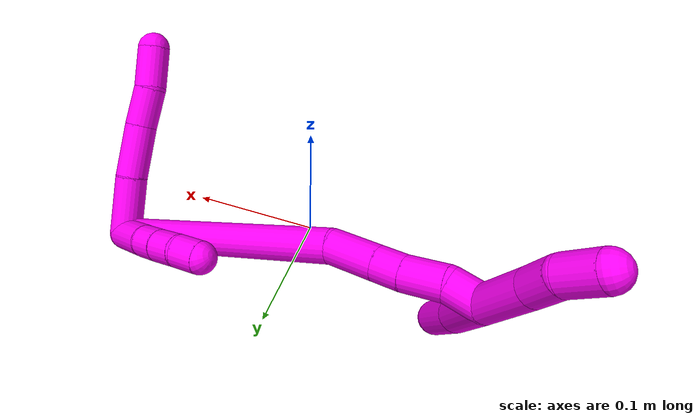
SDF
<sdf version="1.7">
 <world name="default">
  <model name="10">
   <static>0</static>
   <link name="10">
    <collision name="collision-cylinder-e_1_2_8">
     <pose>0.021221 -0.003417 0.007807 0.412497 1.18893 0.281023</pose>
     <geometry><cylinder><radius>0.0125</radius><length>0.045737</length></cylinder></geometry>
     <surface>
      <friction><ode><mu>1.16</mu><mu2>1.16</mu2><slip1>0</slip1><slip2>0</slip2></ode></friction>
      <contact><ode><kp>1e+06</kp><kd>1</kd><max_vel>0</max_vel><min_depth>0.001</min_depth></ode></contact>
     </surface>
    </collision>
    <visual name="visual-cylinder-e_1_2_8">
     <pose>0.021221 -0.003417 0.007807 0.412497 1.18893 0.281023</pose>
     <geometry><cylinder><radius>0.0125</radius><length>0.045737</length></cylinder></geometry>
     <material><ambient>1 0 0.964706 1</ambient></material>
    </visual>
    <collision name="collision-cylinder-e_2_8_9">
     <pose>0.061256 -0.011879 0.022971 0.601195 1.12803 0.387259</pose>
     <geometry><cylinder><radius>0.0125</radius><length>0.041643</length></cylinder></geometry>
     <surface>
      <friction><ode><mu>1.16</mu><mu2>1.16</mu2><slip1>0</slip1><slip2>0</slip2></ode></friction>
      <contact><ode><kp>1e+06</kp><kd>1</kd><max_vel>0</max_vel><min_depth>0.001</min_depth></ode></contact>
     </surface>
    </collision>
    <visual name="visual-cylinder-e_2_8_9">
     <pose>0.061256 -0.011879 0.022971 0.601195 1.12803 0.387259</pose>
     <geometry><cylinder><radius>0.0125</radius><length>0.041643</length></cylinder></geometry>
     <material><ambient>1 0 0.964706 1</ambient></material>
    </visual>
    <collision name="collision-cylinder-e_3_9_10">
     <pose>0.093406 -0.020513 0.036978 0.494771 1.05531 0.292268</pose>
     <geometry><cylinder><radius>0.0125</radius><length>0.030656</length></cylinder></geometry>
     <surface>
      <friction><ode><mu>1.16</mu><mu2>1.16</mu2><slip1>0</slip1><slip2>0</slip2></ode></friction>
      <contact><ode><kp>1e+06</kp><kd>1</kd><max_vel>0</max_vel><min_depth>0.001</min_depth></ode></contact>
     </surface>
    </collision>
    <visual name="visual-cylinder-e_3_9_10">
     <pose>0.093406 -0.020513 0.036978 0.494771 1.05531 0.292268</pose>
     <geometry><cylinder><radius>0.0125</radius><length>0.030656</length></cylinder></geometry>
     <material><ambient>1 0 0.964706 1</ambient></material>
    </visual>
    <collision name="collision-cylinder-e_4_10_6">
     <pose>0.121802 -0.02781 0.047484 0.766005 1.22939 0.5542</pose>
     <geometry><cylinder><radius>0.0125</radius><length>0.031964</length></cylinder></geometry>
     <surface>
      <friction><ode><mu>1.16</mu><mu2>1.16</mu2><slip1>0</slip1><slip2>0</slip2></ode></friction>
      <contact><ode><kp>1e+06</kp><kd>1</kd><max_vel>0</max_vel><min_depth>0.001</min_depth></ode></contact>
     </surface>
    </collision>
    <visual name="visual-cylinder-e_4_10_6">
     <pose>0.121802 -0.02781 0.047484 0.766005 1.22939 0.5542</pose>
     <geometry><cylinder><radius>0.0125</radius><length>0.031964</length></cylinder></geometry>
     <material><ambient>1 0 0.964706 1</ambient></material>
    </visual>
    <collision name="collision-cylinder-e_1_2_11">
     <pose>-0.004493 0.006245 0.017662 -0.339865 -0.235407 0.040575</pose>
     <geometry><cylinder><radius>0.0125</radius><length>0.03853</length></cylinder></geometry>
     <surface>
      <friction><ode><mu>1.16</mu><mu2>1.16</mu2><slip1>0</slip1><slip2>0</slip2></ode></friction>
      <contact><ode><kp>1e+06</kp><kd>1</kd><max_vel>0</max_vel><min_depth>0.001</min_depth></ode></contact>
     </surface>
    </collision>
    <visual name="visual-cylinder-e_1_2_11">
     <pose>-0.004493 0.006245 0.017662 -0.339865 -0.235407 0.040575</pose>
     <geometry><cylinder><radius>0.0125</radius><length>0.03853</length></cylinder></geometry>
     <material><ambient>1 0 0.964706 1</ambient></material>
    </visual>
    <collision name="collision-cylinder-e_2_11_12">
     <pose>-0.011815 0.014384 0.044796 -0.19735 -0.284791 0.028383</pose>
     <geometry><cylinder><radius>0.0125</radius><length>0.02013</length></cylinder></geometry>
     <surface>
      <friction><ode><mu>1.16</mu><mu2>1.16</mu2><slip1>0</slip1><slip2>0</slip2></ode></friction>
      <contact><ode><kp>1e+06</kp><kd>1</kd><max_vel>0</max_vel><min_depth>0.001</min_depth></ode></contact>
     </surface>
    </collision>
    <visual name="visual-cylinder-e_2_11_12">
     <pose>-0.011815 0.014384 0.044796 -0.19735 -0.284791 0.028383</pose>
     <geometry><cylinder><radius>0.0125</radius><length>0.02013</length></cylinder></geometry>
     <material><ambient>1 0 0.964706 1</ambient></material>
    </visual>
    <collision name="collision-cylinder-e_3_12_13">
     <pose>-0.017697 0.017603 0.064343 -0.13073 -0.292016 0.019251</pose>
     <geometry><cylinder><radius>0.0125</radius><length>0.02122</length></cylinder></geometry>
     <surface>
      <friction><ode><mu>1.16</mu><mu2>1.16</mu2><slip1>0</slip1><slip2>0</slip2></ode></friction>
      <contact><ode><kp>1e+06</kp><kd>1</kd><max_vel>0</max_vel><min_depth>0.001</min_depth></ode></contact>
     </surface>
    </collision>
    <visual name="visual-cylinder-e_3_12_13">
     <pose>-0.017697 0.017603 0.064343 -0.13073 -0.292016 0.019251</pose>
     <geometry><cylinder><radius>0.0125</radius><length>0.02122</length></cylinder></geometry>
     <material><ambient>1 0 0.964706 1</ambient></material>
    </visual>
    <collision name="collision-cylinder-e_4_13_5">
     <pose>-0.024799 0.018247 0.083602 0.073912 -0.414063 -0.015531</pose>
     <geometry><cylinder><radius>0.0125</radius><length>0.02012</length></cylinder></geometry>
     <surface>
      <friction><ode><mu>1.16</mu><mu2>1.16</mu2><slip1>0</slip1><slip2>0</slip2></ode></friction>
      <contact><ode><kp>1e+06</kp><kd>1</kd><max_vel>0</max_vel><min_depth>0.001</min_depth></ode></contact>
     </surface>
    </collision>
    <visual name="visual-cylinder-e_4_13_5">
     <pose>-0.024799 0.018247 0.083602 0.073912 -0.414063 -0.015531</pose>
     <geometry><cylinder><radius>0.0125</radius><length>0.02012</length></cylinder></geometry>
     <material><ambient>1 0 0.964706 1</ambient></material>
    </visual>
    <collision name="collision-cylinder-e_1_2_14">
     <pose>-0.02074 -0.00727 0.092297 0.078605 -0.220378 -0.008701</pose>
     <geometry><cylinder><radius>0.0125</radius><length>0.189754</length></cylinder></geometry>
     <surface>
      <friction><ode><mu>1.16</mu><mu2>1.16</mu2><slip1>0</slip1><slip2>0</slip2></ode></friction>
      <contact><ode><kp>1e+06</kp><kd>1</kd><max_vel>0</max_vel><min_depth>0.001</min_depth></ode></contact>
     </surface>
    </collision>
    <visual name="visual-cylinder-e_1_2_14">
     <pose>-0.02074 -0.00727 0.092297 0.078605 -0.220378 -0.008701</pose>
     <geometry><cylinder><radius>0.0125</radius><length>0.189754</length></cylinder></geometry>
     <material><ambient>1 0 0.964706 1</ambient></material>
    </visual>
    <collision name="collision-cylinder-e_2_14_15">
     <pose>-0.049692 -0.014468 0.200703 -0.004496 -0.471393 0.00108</pose>
     <geometry><cylinder><radius>0.0125</radius><length>0.036165</length></cylinder></geometry>
     <surface>
      <friction><ode><mu>1.16</mu><mu2>1.16</mu2><slip1>0</slip1><slip2>0</slip2></ode></friction>
      <contact><ode><kp>1e+06</kp><kd>1</kd><max_vel>0</max_vel><min_depth>0.001</min_depth></ode></contact>
     </surface>
    </collision>
    <visual name="visual-cylinder-e_2_14_15">
     <pose>-0.049692 -0.014468 0.200703 -0.004496 -0.471393 0.00108</pose>
     <geometry><cylinder><radius>0.0125</radius><length>0.036165</length></cylinder></geometry>
     <material><ambient>1 0 0.964706 1</ambient></material>
    </visual>
    <collision name="collision-cylinder-e_3_15_16">
     <pose>-0.062422 -0.014311 0.225767 -0.009352 -0.467312 0.002226</pose>
     <geometry><cylinder><radius>0.0125</radius><length>0.020058</length></cylinder></geometry>
     <surface>
      <friction><ode><mu>1.16</mu><mu2>1.16</mu2><slip1>0</slip1><slip2>0</slip2></ode></friction>
      <contact><ode><kp>1e+06</kp><kd>1</kd><max_vel>0</max_vel><min_depth>0.001</min_depth></ode></contact>
     </surface>
    </collision>
    <visual name="visual-cylinder-e_3_15_16">
     <pose>-0.062422 -0.014311 0.225767 -0.009352 -0.467312 0.002226</pose>
     <geometry><cylinder><radius>0.0125</radius><length>0.020058</length></cylinder></geometry>
     <material><ambient>1 0 0.964706 1</ambient></material>
    </visual>
    <collision name="collision-cylinder-e_4_16_17">
     <pose>-0.072177 -0.014403 0.248946 0.012294 -0.352738 -0.002191</pose>
     <geometry><cylinder><radius>0.0125</radius><length>0.03032</length></cylinder></geometry>
     <surface>
      <friction><ode><mu>1.16</mu><mu2>1.16</mu2><slip1>0</slip1><slip2>0</slip2></ode></friction>
      <contact><ode><kp>1e+06</kp><kd>1</kd><max_vel>0</max_vel><min_depth>0.001</min_depth></ode></contact>
     </surface>
    </collision>
    <visual name="visual-cylinder-e_4_16_17">
     <pose>-0.072177 -0.014403 0.248946 0.012294 -0.352738 -0.002191</pose>
     <geometry><cylinder><radius>0.0125</radius><length>0.03032</length></cylinder></geometry>
     <material><ambient>1 0 0.964706 1</ambient></material>
    </visual>
    <collision name="collision-cylinder-e_5_17_1">
     <pose>-0.084941 -0.015333 0.272295 0.082653 -0.688101 -0.02963</pose>
     <geometry><cylinder><radius>0.0125</radius><length>0.023702</length></cylinder></geometry>
     <surface>
      <friction><ode><mu>1.16</mu><mu2>1.16</mu2><slip1>0</slip1><slip2>0</slip2></ode></friction>
      <contact><ode><kp>1e+06</kp><kd>1</kd><max_vel>0</max_vel><min_depth>0.001</min_depth></ode></contact>
     </surface>
    </collision>
    <visual name="visual-cylinder-e_5_17_1">
     <pose>-0.084941 -0.015333 0.272295 0.082653 -0.688101 -0.02963</pose>
     <geometry><cylinder><radius>0.0125</radius><length>0.023702</length></cylinder></geometry>
     <material><ambient>1 0 0.964706 1</ambient></material>
    </visual>
    <collision name="collision-cylinder-e_1_1_18">
     <pose>-0.09945 -0.034689 0.261739 2.38437 -0.252383 -0.617441</pose>
     <geometry><cylinder><radius>0.0125</radius><length>0.055929</length></cylinder></geometry>
     <surface>
      <friction><ode><mu>1.16</mu><mu2>1.16</mu2><slip1>0</slip1><slip2>0</slip2></ode></friction>
      <contact><ode><kp>1e+06</kp><kd>1</kd><max_vel>0</max_vel><min_depth>0.001</min_depth></ode></contact>
     </surface>
    </collision>
    <visual name="visual-cylinder-e_1_1_18">
     <pose>-0.09945 -0.034689 0.261739 2.38437 -0.252383 -0.617441</pose>
     <geometry><cylinder><radius>0.0125</radius><length>0.055929</length></cylinder></geometry>
     <material><ambient>1 0 0.964706 1</ambient></material>
    </visual>
    <collision name="collision-cylinder-e_2_18_4">
     <pose>-0.110477 -0.067489 0.225701 2.42673 -0.184547 -0.485763</pose>
     <geometry><cylinder><radius>0.0125</radius><length>0.044071</length></cylinder></geometry>
     <surface>
      <friction><ode><mu>1.16</mu><mu2>1.16</mu2><slip1>0</slip1><slip2>0</slip2></ode></friction>
      <contact><ode><kp>1e+06</kp><kd>1</kd><max_vel>0</max_vel><min_depth>0.001</min_depth></ode></contact>
     </surface>
    </collision>
    <visual name="visual-cylinder-e_2_18_4">
     <pose>-0.110477 -0.067489 0.225701 2.42673 -0.184547 -0.485763</pose>
     <geometry><cylinder><radius>0.0125</radius><length>0.044071</length></cylinder></geometry>
     <material><ambient>1 0 0.964706 1</ambient></material>
    </visual>
    <collision name="collision-cylinder-e_1_1_19">
     <pose>-0.086702 -0.006192 0.301823 -0.451611 0.248952 -0.057471</pose>
     <geometry><cylinder><radius>0.0125</radius><length>0.046799</length></cylinder></geometry>
     <surface>
      <friction><ode><mu>1.16</mu><mu2>1.16</mu2><slip1>0</slip1><slip2>0</slip2></ode></friction>
      <contact><ode><kp>1e+06</kp><kd>1</kd><max_vel>0</max_vel><min_depth>0.001</min_depth></ode></contact>
     </surface>
    </collision>
    <visual name="visual-cylinder-e_1_1_19">
     <pose>-0.086702 -0.006192 0.301823 -0.451611 0.248952 -0.057471</pose>
     <geometry><cylinder><radius>0.0125</radius><length>0.046799</length></cylinder></geometry>
     <material><ambient>1 0 0.964706 1</ambient></material>
    </visual>
    <collision name="collision-cylinder-e_2_19_20">
     <pose>-0.077403 0.009819 0.333185 -0.508911 0.274459 -0.071806</pose>
     <geometry><cylinder><radius>0.0125</radius><length>0.026072</length></cylinder></geometry>
     <surface>
      <friction><ode><mu>1.16</mu><mu2>1.16</mu2><slip1>0</slip1><slip2>0</slip2></ode></friction>
      <contact><ode><kp>1e+06</kp><kd>1</kd><max_vel>0</max_vel><min_depth>0.001</min_depth></ode></contact>
     </surface>
    </collision>
    <visual name="visual-cylinder-e_2_19_20">
     <pose>-0.077403 0.009819 0.333185 -0.508911 0.274459 -0.071806</pose>
     <geometry><cylinder><radius>0.0125</radius><length>0.026072</length></cylinder></geometry>
     <material><ambient>1 0 0.964706 1</ambient></material>
    </visual>
    <collision name="collision-cylinder-e_3_20_3">
     <pose>-0.073418 0.019325 0.357269 -0.252886 0.033318 -0.004236</pose>
     <geometry><cylinder><radius>0.0125</radius><length>0.027129</length></cylinder></geometry>
     <surface>
      <friction><ode><mu>1.16</mu><mu2>1.16</mu2><slip1>0</slip1><slip2>0</slip2></ode></friction>
      <contact><ode><kp>1e+06</kp><kd>1</kd><max_vel>0</max_vel><min_depth>0.001</min_depth></ode></contact>
     </surface>
    </collision>
    <visual name="visual-cylinder-e_3_20_3">
     <pose>-0.073418 0.019325 0.357269 -0.252886 0.033318 -0.004236</pose>
     <geometry><cylinder><radius>0.0125</radius><length>0.027129</length></cylinder></geometry>
     <material><ambient>1 0 0.964706 1</ambient></material>
    </visual>
    <collision name="collision-sphere-3">
     <pose>-0.072966 0.022717 0.370395 0 -0 0</pose>
     <geometry><sphere><radius>0.0125</radius></sphere></geometry>
     <surface>
      <friction><ode><mu>1.16</mu><mu2>1.16</mu2><slip1>0</slip1><slip2>0</slip2></ode></friction>
      <contact><ode><kp>1e+06</kp><kd>1</kd><max_vel>0</max_vel><min_depth>0.001</min_depth></ode></contact>
     </surface>
    </collision>
    <visual name="visual-sphere-3">
     <pose>-0.072966 0.022717 0.370395 0 -0 0</pose>
     <geometry><sphere><radius>0.0125</radius></sphere></geometry>
     <material><ambient>1 0 0.964706 1</ambient></material>
    </visual>
    <collision name="collision-sphere-20">
     <pose>-0.07387 0.015933 0.344143 0 -0 0</pose>
     <geometry><sphere><radius>0.0125</radius></sphere></geometry>
     <surface>
      <friction><ode><mu>1.16</mu><mu2>1.16</mu2><slip1>0</slip1><slip2>0</slip2></ode></friction>
      <contact><ode><kp>1e+06</kp><kd>1</kd><max_vel>0</max_vel><min_depth>0.001</min_depth></ode></contact>
     </surface>
    </collision>
    <visual name="visual-sphere-20">
     <pose>-0.07387 0.015933 0.344143 0 -0 0</pose>
     <geometry><sphere><radius>0.0125</radius></sphere></geometry>
     <material><ambient>1 0 0.964706 1</ambient></material>
    </visual>
    <collision name="collision-sphere-19">
     <pose>-0.080936 0.003705 0.322227 0 -0 0</pose>
     <geometry><sphere><radius>0.0125</radius></sphere></geometry>
     <surface>
      <friction><ode><mu>1.16</mu><mu2>1.16</mu2><slip1>0</slip1><slip2>0</slip2></ode></friction>
      <contact><ode><kp>1e+06</kp><kd>1</kd><max_vel>0</max_vel><min_depth>0.001</min_depth></ode></contact>
     </surface>
    </collision>
    <visual name="visual-sphere-19">
     <pose>-0.080936 0.003705 0.322227 0 -0 0</pose>
     <geometry><sphere><radius>0.0125</radius></sphere></geometry>
     <material><ambient>1 0 0.964706 1</ambient></material>
    </visual>
    <collision name="collision-sphere-11">
     <pose>-0.008987 0.01249 0.035324 0 -0 0</pose>
     <geometry><sphere><radius>0.0125</radius></sphere></geometry>
     <surface>
      <friction><ode><mu>1.16</mu><mu2>1.16</mu2><slip1>0</slip1><slip2>0</slip2></ode></friction>
      <contact><ode><kp>1e+06</kp><kd>1</kd><max_vel>0</max_vel><min_depth>0.001</min_depth></ode></contact>
     </surface>
    </collision>
    <visual name="visual-sphere-11">
     <pose>-0.008987 0.01249 0.035324 0 -0 0</pose>
     <geometry><sphere><radius>0.0125</radius></sphere></geometry>
     <material><ambient>1 0 0.964706 1</ambient></material>
    </visual>
    <collision name="collision-sphere-6">
     <pose>0.136861 -0.03152 0.051341 0 -0 0</pose>
     <geometry><sphere><radius>0.0125</radius></sphere></geometry>
     <surface>
      <friction><ode><mu>1.16</mu><mu2>1.16</mu2><slip1>0</slip1><slip2>0</slip2></ode></friction>
      <contact><ode><kp>1e+06</kp><kd>1</kd><max_vel>0</max_vel><min_depth>0.001</min_depth></ode></contact>
     </surface>
    </collision>
    <visual name="visual-sphere-6">
     <pose>0.136861 -0.03152 0.051341 0 -0 0</pose>
     <geometry><sphere><radius>0.0125</radius></sphere></geometry>
     <material><ambient>1 0 0.964706 1</ambient></material>
    </visual>
    <collision name="collision-sphere-10">
     <pose>0.106742 -0.0241 0.043628 0 -0 0</pose>
     <geometry><sphere><radius>0.0125</radius></sphere></geometry>
     <surface>
      <friction><ode><mu>1.16</mu><mu2>1.16</mu2><slip1>0</slip1><slip2>0</slip2></ode></friction>
      <contact><ode><kp>1e+06</kp><kd>1</kd><max_vel>0</max_vel><min_depth>0.001</min_depth></ode></contact>
     </surface>
    </collision>
    <visual name="visual-sphere-10">
     <pose>0.106742 -0.0241 0.043628 0 -0 0</pose>
     <geometry><sphere><radius>0.0125</radius></sphere></geometry>
     <material><ambient>1 0 0.964706 1</ambient></material>
    </visual>
    <collision name="collision-sphere-9">
     <pose>0.08007 -0.016925 0.030328 0 -0 0</pose>
     <geometry><sphere><radius>0.0125</radius></sphere></geometry>
     <surface>
      <friction><ode><mu>1.16</mu><mu2>1.16</mu2><slip1>0</slip1><slip2>0</slip2></ode></friction>
      <contact><ode><kp>1e+06</kp><kd>1</kd><max_vel>0</max_vel><min_depth>0.001</min_depth></ode></contact>
     </surface>
    </collision>
    <visual name="visual-sphere-9">
     <pose>0.08007 -0.016925 0.030328 0 -0 0</pose>
     <geometry><sphere><radius>0.0125</radius></sphere></geometry>
     <material><ambient>1 0 0.964706 1</ambient></material>
    </visual>
    <collision name="collision-sphere-2">
     <geometry><sphere><radius>0.0125</radius></sphere></geometry>
     <surface>
      <friction><ode><mu>1.16</mu><mu2>1.16</mu2><slip1>0</slip1><slip2>0</slip2></ode></friction>
      <contact><ode><kp>1e+06</kp><kd>1</kd><max_vel>0</max_vel><min_depth>0.001</min_depth></ode></contact>
     </surface>
    </collision>
    <visual name="visual-sphere-2">
     <geometry><sphere><radius>0.0125</radius></sphere></geometry>
     <material><ambient>1 0 0.964706 1</ambient></material>
    </visual>
    <collision name="collision-sphere-8">
     <pose>0.042443 -0.006833 0.015615 0 -0 0</pose>
     <geometry><sphere><radius>0.0125</radius></sphere></geometry>
     <surface>
      <friction><ode><mu>1.16</mu><mu2>1.16</mu2><slip1>0</slip1><slip2>0</slip2></ode></friction>
      <contact><ode><kp>1e+06</kp><kd>1</kd><max_vel>0</max_vel><min_depth>0.001</min_depth></ode></contact>
     </surface>
    </collision>
    <visual name="visual-sphere-8">
     <pose>0.042443 -0.006833 0.015615 0 -0 0</pose>
     <geometry><sphere><radius>0.0125</radius></sphere></geometry>
     <material><ambient>1 0 0.964706 1</ambient></material>
    </visual>
    <collision name="collision-sphere-12">
     <pose>-0.014642 0.016278 0.054269 0 -0 0</pose>
     <geometry><sphere><radius>0.0125</radius></sphere></geometry>
     <surface>
      <friction><ode><mu>1.16</mu><mu2>1.16</mu2><slip1>0</slip1><slip2>0</slip2></ode></friction>
      <contact><ode><kp>1e+06</kp><kd>1</kd><max_vel>0</max_vel><min_depth>0.001</min_depth></ode></contact>
     </surface>
    </collision>
    <visual name="visual-sphere-12">
     <pose>-0.014642 0.016278 0.054269 0 -0 0</pose>
     <geometry><sphere><radius>0.0125</radius></sphere></geometry>
     <material><ambient>1 0 0.964706 1</ambient></material>
    </visual>
    <collision name="collision-sphere-13">
     <pose>-0.020751 0.018927 0.074417 0 -0 0</pose>
     <geometry><sphere><radius>0.0125</radius></sphere></geometry>
     <surface>
      <friction><ode><mu>1.16</mu><mu2>1.16</mu2><slip1>0</slip1><slip2>0</slip2></ode></friction>
      <contact><ode><kp>1e+06</kp><kd>1</kd><max_vel>0</max_vel><min_depth>0.001</min_depth></ode></contact>
     </surface>
    </collision>
    <visual name="visual-sphere-13">
     <pose>-0.020751 0.018927 0.074417 0 -0 0</pose>
     <geometry><sphere><radius>0.0125</radius></sphere></geometry>
     <material><ambient>1 0 0.964706 1</ambient></material>
    </visual>
    <collision name="collision-sphere-5">
     <pose>-0.028846 0.017567 0.092786 0 -0 0</pose>
     <geometry><sphere><radius>0.0125</radius></sphere></geometry>
     <surface>
      <friction><ode><mu>1.16</mu><mu2>1.16</mu2><slip1>0</slip1><slip2>0</slip2></ode></friction>
      <contact><ode><kp>1e+06</kp><kd>1</kd><max_vel>0</max_vel><min_depth>0.001</min_depth></ode></contact>
     </surface>
    </collision>
    <visual name="visual-sphere-5">
     <pose>-0.028846 0.017567 0.092786 0 -0 0</pose>
     <geometry><sphere><radius>0.0125</radius></sphere></geometry>
     <material><ambient>1 0 0.964706 1</ambient></material>
    </visual>
    <collision name="collision-sphere-14">
     <pose>-0.04148 -0.01454 0.184593 0 -0 0</pose>
     <geometry><sphere><radius>0.0125</radius></sphere></geometry>
     <surface>
      <friction><ode><mu>1.16</mu><mu2>1.16</mu2><slip1>0</slip1><slip2>0</slip2></ode></friction>
      <contact><ode><kp>1e+06</kp><kd>1</kd><max_vel>0</max_vel><min_depth>0.001</min_depth></ode></contact>
     </surface>
    </collision>
    <visual name="visual-sphere-14">
     <pose>-0.04148 -0.01454 0.184593 0 -0 0</pose>
     <geometry><sphere><radius>0.0125</radius></sphere></geometry>
     <material><ambient>1 0 0.964706 1</ambient></material>
    </visual>
    <collision name="collision-sphere-15">
     <pose>-0.057904 -0.014395 0.216814 0 -0 0</pose>
     <geometry><sphere><radius>0.0125</radius></sphere></geometry>
     <surface>
      <friction><ode><mu>1.16</mu><mu2>1.16</mu2><slip1>0</slip1><slip2>0</slip2></ode></friction>
      <contact><ode><kp>1e+06</kp><kd>1</kd><max_vel>0</max_vel><min_depth>0.001</min_depth></ode></contact>
     </surface>
    </collision>
    <visual name="visual-sphere-15">
     <pose>-0.057904 -0.014395 0.216814 0 -0 0</pose>
     <geometry><sphere><radius>0.0125</radius></sphere></geometry>
     <material><ambient>1 0 0.964706 1</ambient></material>
    </visual>
    <collision name="collision-sphere-16">
     <pose>-0.06694 -0.014228 0.23472 0 -0 0</pose>
     <geometry><sphere><radius>0.0125</radius></sphere></geometry>
     <surface>
      <friction><ode><mu>1.16</mu><mu2>1.16</mu2><slip1>0</slip1><slip2>0</slip2></ode></friction>
      <contact><ode><kp>1e+06</kp><kd>1</kd><max_vel>0</max_vel><min_depth>0.001</min_depth></ode></contact>
     </surface>
    </collision>
    <visual name="visual-sphere-16">
     <pose>-0.06694 -0.014228 0.23472 0 -0 0</pose>
     <geometry><sphere><radius>0.0125</radius></sphere></geometry>
     <material><ambient>1 0 0.964706 1</ambient></material>
    </visual>
    <collision name="collision-sphere-17">
     <pose>-0.077414 -0.014577 0.263172 0 -0 0</pose>
     <geometry><sphere><radius>0.0125</radius></sphere></geometry>
     <surface>
      <friction><ode><mu>1.16</mu><mu2>1.16</mu2><slip1>0</slip1><slip2>0</slip2></ode></friction>
      <contact><ode><kp>1e+06</kp><kd>1</kd><max_vel>0</max_vel><min_depth>0.001</min_depth></ode></contact>
     </surface>
    </collision>
    <visual name="visual-sphere-17">
     <pose>-0.077414 -0.014577 0.263172 0 -0 0</pose>
     <geometry><sphere><radius>0.0125</radius></sphere></geometry>
     <material><ambient>1 0 0.964706 1</ambient></material>
    </visual>
    <collision name="collision-sphere-1">
     <pose>-0.092467 -0.016089 0.281418 0 -0 0</pose>
     <geometry><sphere><radius>0.0125</radius></sphere></geometry>
     <surface>
      <friction><ode><mu>1.16</mu><mu2>1.16</mu2><slip1>0</slip1><slip2>0</slip2></ode></friction>
      <contact><ode><kp>1e+06</kp><kd>1</kd><max_vel>0</max_vel><min_depth>0.001</min_depth></ode></contact>
     </surface>
    </collision>
    <visual name="visual-sphere-1">
     <pose>-0.092467 -0.016089 0.281418 0 -0 0</pose>
     <geometry><sphere><radius>0.0125</radius></sphere></geometry>
     <material><ambient>1 0 0.964706 1</ambient></material>
    </visual>
    <collision name="collision-sphere-18">
     <pose>-0.106433 -0.05329 0.242059 0 -0 0</pose>
     <geometry><sphere><radius>0.0125</radius></sphere></geometry>
     <surface>
      <friction><ode><mu>1.16</mu><mu2>1.16</mu2><slip1>0</slip1><slip2>0</slip2></ode></friction>
      <contact><ode><kp>1e+06</kp><kd>1</kd><max_vel>0</max_vel><min_depth>0.001</min_depth></ode></contact>
     </surface>
    </collision>
    <visual name="visual-sphere-18">
     <pose>-0.106433 -0.05329 0.242059 0 -0 0</pose>
     <geometry><sphere><radius>0.0125</radius></sphere></geometry>
     <material><ambient>1 0 0.964706 1</ambient></material>
    </visual>
    <collision name="collision-sphere-4">
     <pose>-0.11452 -0.081688 0.209343 0 -0 0</pose>
     <geometry><sphere><radius>0.0125</radius></sphere></geometry>
     <surface>
      <friction><ode><mu>1.16</mu><mu2>1.16</mu2><slip1>0</slip1><slip2>0</slip2></ode></friction>
      <contact><ode><kp>1e+06</kp><kd>1</kd><max_vel>0</max_vel><min_depth>0.001</min_depth></ode></contact>
     </surface>
    </collision>
    <visual name="visual-sphere-4">
     <pose>-0.11452 -0.081688 0.209343 0 -0 0</pose>
     <geometry><sphere><radius>0.0125</radius></sphere></geometry>
     <material><ambient>1 0 0.964706 1</ambient></material>
    </visual>
    <inertial>
     <pose>-0.027589 -0.011082 0.145316 0 -0 0</pose>
     <mass>0.75</mass>
     <inertia>
      <ixx>0.000615</ixx>
      <ixy>0</ixy>
      <ixz>0</ixz>
      <iyy>0.000603</iyy>
      <iyz>0</iyz>
      <izz>0.000206</izz>
     </inertia>
    </inertial>
   </link>
   <pose>0.131686 0.070815 0.013991 0.67129 -0.788414 -0.842721</pose>
  </model>
 </world>
</sdf>
